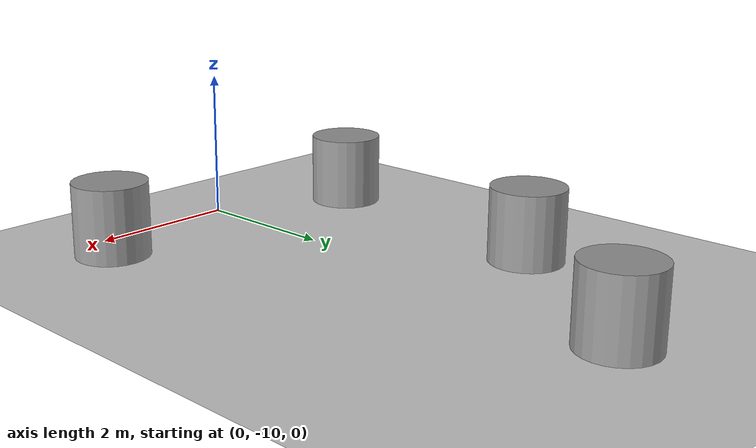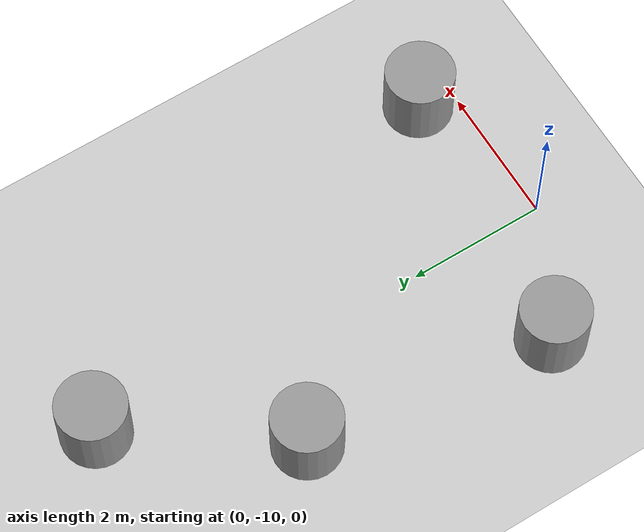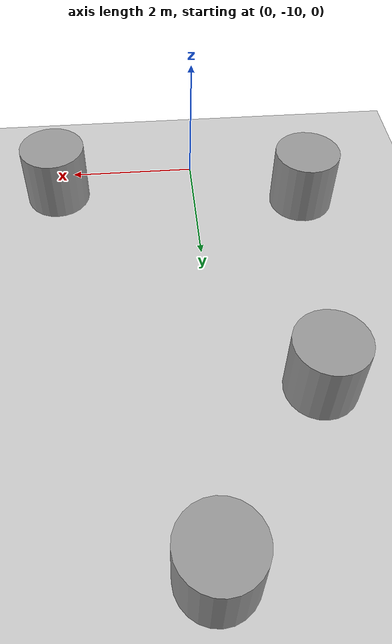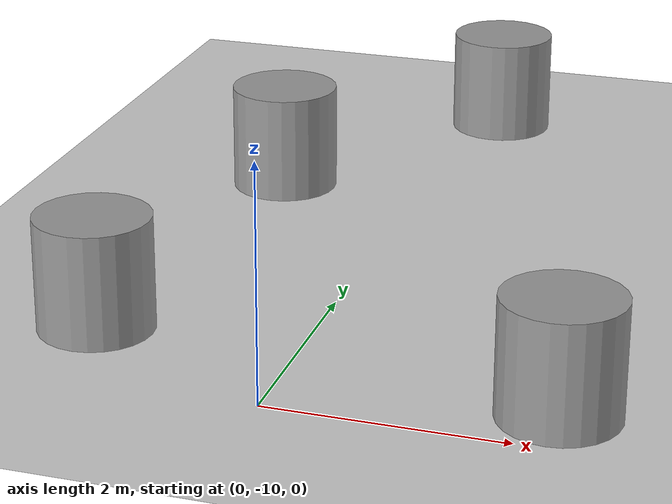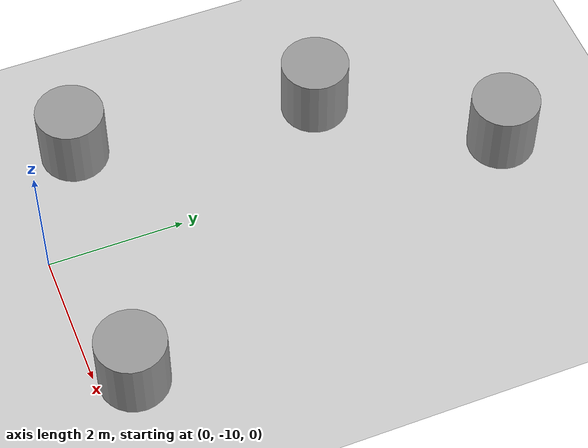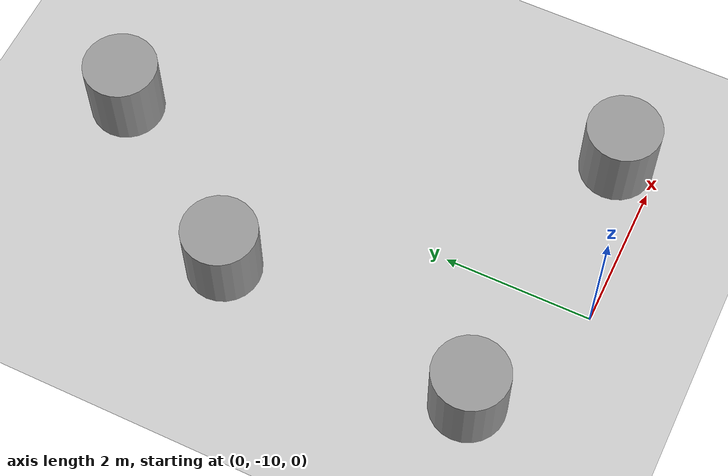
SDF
<sdf version="1.5">
 <world name="default">
  <light name="sun" type="directional">
   <pose>0 0 10 0 -0 0</pose>
   <diffuse>0.8 0.8 0.8 1</diffuse>
   <specular>0.2 0.2 0.2 1</specular>
   <attenuation>
    <range>1000</range>
    <constant>0.9</constant>
    <linear>0.01</linear>
    <quadratic>0.001</quadratic>
   </attenuation>
   <direction>0 0.5 -0.9</direction>
  </light>
  <light name="point_light" type="point">
   <pose>0 -0.377195 6.59868 0 -0 0</pose>
   <diffuse>0.784314 0.784314 0.784314 1</diffuse>
   <specular>0.0980392 0.0980392 0.0980392 1</specular>
   <attenuation>
    <range>50</range>
    <constant>0.8</constant>
    <linear>0</linear>
    <quadratic>0.001</quadratic>
   </attenuation>
   <cast_shadows>0</cast_shadows>
   <direction>0 0 -1</direction>
  </light>
  <include><uri>model://ground_plane</uri></include>
  <model name="unit_cylinder_0">
   <pose>-1.31522 -5.44221 0.5 0 -0 0</pose>
   <link name="link">
    <inertial>
     <mass>1</mass>
     <inertia><ixx>0.145833</ixx><ixy>0</ixy><ixz>0</ixz><iyy>0.145833</iyy><iyz>0</iyz><izz>0.125</izz></inertia>
    </inertial>
    <collision name="collision">
     <geometry><cylinder><radius>0.5</radius><length>1</length></cylinder></geometry>
    </collision>
    <visual name="visual">
     <geometry><cylinder><radius>0.5</radius><length>1</length></cylinder></geometry>
     <material>
      <script><name>Gazebo/Grey</name><uri>file://media/materials/scripts/gazebo.material</uri></script>
     </material>
    </visual>
   </link>
  </model>
  <model name="unit_cylinder_1">
   <pose>-1.74799 -9.05958 0.5 0 -0 0</pose>
   <link name="link">
    <inertial>
     <mass>1</mass>
     <inertia><ixx>0.145833</ixx><ixy>0</ixy><ixz>0</ixz><iyy>0.145833</iyy><iyz>0</iyz><izz>0.125</izz></inertia>
    </inertial>
    <collision name="collision">
     <geometry><cylinder><radius>0.5</radius><length>1</length></cylinder></geometry>
    </collision>
    <visual name="visual">
     <geometry><cylinder><radius>0.5</radius><length>1</length></cylinder></geometry>
     <material>
      <script><name>Gazebo/Grey</name><uri>file://media/materials/scripts/gazebo.material</uri></script>
     </material>
    </visual>
   </link>
  </model>
  <model name="unit_cylinder_2">
   <pose>2.23087 -9.47344 0.5 0 -0 0</pose>
   <link name="link">
    <inertial>
     <mass>1</mass>
     <inertia><ixx>0.145833</ixx><ixy>0</ixy><ixz>0</ixz><iyy>0.145833</iyy><iyz>0</iyz><izz>0.125</izz></inertia>
    </inertial>
    <collision name="collision">
     <geometry><cylinder><radius>0.5</radius><length>1</length></cylinder></geometry>
    </collision>
    <visual name="visual">
     <geometry><cylinder><radius>0.5</radius><length>1</length></cylinder></geometry>
     <material>
      <script><name>Gazebo/Grey</name><uri>file://media/materials/scripts/gazebo.material</uri></script>
     </material>
    </visual>
   </link>
  </model>
  <model name="unit_cylinder_3">
   <pose>0.31355 -3.13167 0.5 0 -0 0</pose>
   <link name="link">
    <inertial>
     <mass>1</mass>
     <inertia><ixx>0.145833</ixx><ixy>0</ixy><ixz>0</ixz><iyy>0.145833</iyy><iyz>0</iyz><izz>0.125</izz></inertia>
    </inertial>
    <collision name="collision">
     <geometry><cylinder><radius>0.5</radius><length>1</length></cylinder></geometry>
    </collision>
    <visual name="visual">
     <geometry><cylinder><radius>0.5</radius><length>1</length></cylinder></geometry>
     <material>
      <script><name>Gazebo/Grey</name><uri>file://media/materials/scripts/gazebo.material</uri></script>
     </material>
    </visual>
   </link>
  </model>
 </world>
</sdf>
